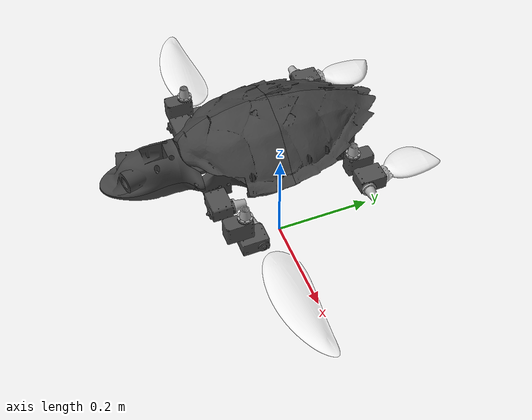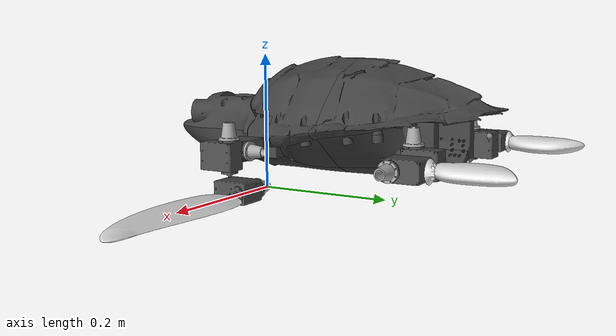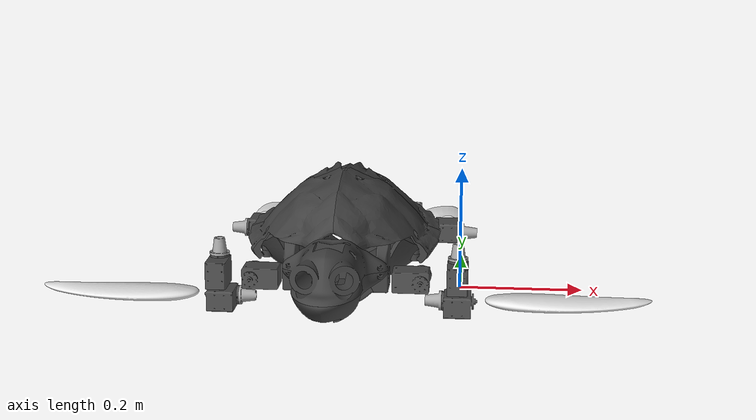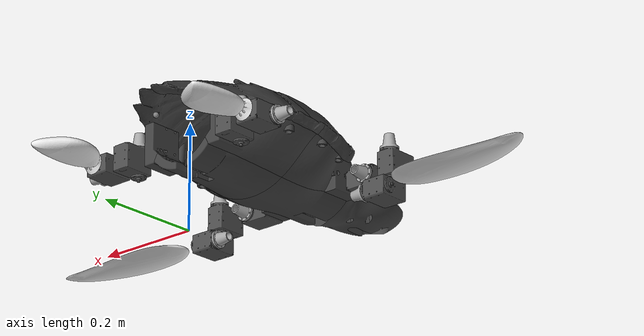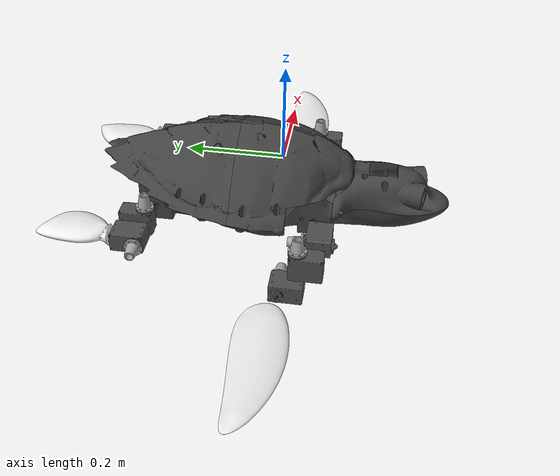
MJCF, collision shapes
<?xml version="1.0" ?>
<!-- Real turtle robot from Onshape export, adapted for MJPC Turtle 3D Swimming task.
     Actuators replaced with velocity type; MJPC sites added to root body. -->
<mujoco model="turtle_3dswimming_body">
  <compiler angle="radian" meshdir="assets" autolimits="true"/>
  <option integrator="implicit" timestep="0.005" gravity="0 0 0" density="1000" viscosity="0.0009" cone="elliptic" noslip_iterations="1"/>
  <default>
    <default class="turtle">
      <default class="visual">
        <geom type="mesh" contype="0" conaffinity="0" group="2"/>
      </default>
      <default class="collision">
        <geom group="3"/>
      </default>
    </default>
    <default class="fluid-ellipsoid-model">
        <geom fluidshape="ellipsoid"/>
    </default>
  </default>
  <worldbody>
    <!-- Link fr13_s105k (root body — free base) -->
    <body name="fr13_s105k" pos="0 0 0" quat="1 0 0 0" childclass="turtle">
      <inertial pos="-0.196495 0.00135248 0.0717682" mass="6.33343" fullinertia="0.137185 0.0361035 0.148315 0.000586929 -4.92463e-05 -0.00482738"/>
      <joint name="world_frame_to_base" type="free" axis="0.0 -1.0 0.0" />

      <!-- MJPC task sites: body-frame positions for head (front), tail (rear), and CoM -->
      <!-- Convention: -y = forward/head direction, +y = rear/tail direction -->
      <site name="base_cog"  pos="-0.196495  0.00135248 0.0717682"/>
      <site name="head_pos"  pos="-0.196    -0.22       0.072"/>
      <site name="tail_pos"  pos="-0.196     0.28       0.072"/>

      <!-- Part shell_bottom_bl -->
      <geom type="mesh" class="visual" pos="-0.193066 0.0607691 0.0949323" quat="0.706451 0.03038 0.0331563 -0.706332" mesh="shell_bottom_bl" material="shell_bottom_bl_material"/>
      <geom type="mesh" class="collision" pos="-0.193066 0.0607691 0.0949323" quat="0.706451 0.03038 0.0331563 -0.706332" mesh="shell_bottom_bl" material="shell_bottom_bl_material"/>
      <!-- Part shell -->
      <geom type="mesh" class="visual" pos="-0.193066 0.0607691 0.0949323" quat="0.706451 0.03038 0.0331563 -0.706332" mesh="shell" material="shell_material"/>
      <geom type="mesh" class="collision" pos="-0.193066 0.0607691 0.0949323" quat="0.706451 0.03038 0.0331563 -0.706332" mesh="shell" material="shell_material"/>
      <!-- Part protector -->
      <geom type="mesh" class="visual" pos="-0.0607344 -0.104872 0.0406092" quat="0.707107 0.707107 0.000629741 0.000629741" mesh="protector" material="protector_material"/>
      <geom type="mesh" class="collision" pos="-0.0607344 -0.104872 0.0406092" quat="0.707107 0.707107 0.000629741 0.000629741" mesh="protector" material="protector_material"/>
      <!-- Part 4in_tube -->
      <geom type="mesh" class="visual" pos="-0.196045 -0.0992129 0.0731481" quat="7.88867e-16 -0.707736 0.706477 -5.03839e-16" mesh="4in_tube" material="4in_tube_material"/>
      <!-- Part shell_2 -->
      <geom type="mesh" class="visual" pos="-0.193066 0.0607691 0.0949323" quat="0.706451 0.03038 0.0331563 -0.706332" mesh="shell__2" material="shell__2_material"/>
      <geom type="mesh" class="collision" pos="-0.193066 0.0607691 0.0949323" quat="0.706451 0.03038 0.0331563 -0.706332" mesh="shell__2" material="shell__2_material"/>
      <!-- Part shell_bottom_br -->
      <geom type="mesh" class="visual" pos="-0.193066 0.0607691 0.0949323" quat="0.706451 0.03038 0.0331563 -0.706332" mesh="shell_bottom_br" material="shell_bottom_br_material"/>
      <geom type="mesh" class="collision" pos="-0.193066 0.0607691 0.0949323" quat="0.706451 0.03038 0.0331563 -0.706332" mesh="shell_bottom_br" material="shell_bottom_br_material"/>
      <!-- Part shell_bottom_fl -->
      <geom type="mesh" class="visual" pos="-0.193066 0.0607691 0.0949323" quat="0.706451 0.03038 0.0331563 -0.706332" mesh="shell_bottom_fl" material="shell_bottom_fl_material"/>
      <geom type="mesh" class="collision" pos="-0.193066 0.0607691 0.0949323" quat="0.706451 0.03038 0.0331563 -0.706332" mesh="shell_bottom_fl" material="shell_bottom_fl_material"/>
      <!-- Part explorehd camera (no collision) -->
      <geom type="mesh" class="visual" pos="-0.171515 -0.255003 0.0888314" quat="0.70089 0.70089 0.0935589 0.0935589" mesh="explorehd_2_0_public_step_1_solid1" material="explorehd_2_0_public_step_1_solid1_material"/>
      <!-- Part shell_bottom_bm -->
      <geom type="mesh" class="visual" pos="-0.193066 0.0607691 0.0949323" quat="0.706451 0.03038 0.0331563 -0.706332" mesh="shell_bottom_bm" material="shell_bottom_bm_material"/>
      <geom type="mesh" class="collision" pos="-0.193066 0.0607691 0.0949323" quat="0.706451 0.03038 0.0331563 -0.706332" mesh="shell_bottom_bm" material="shell_bottom_bm_material"/>
      <!-- Part fr13_s105k body (visual only) -->
      <geom type="mesh" class="visual" pos="-0.111735 -0.104563 0.0406092" quat="0.500445 0.499555 0.500445 -0.499555" mesh="fr13_s105k" material="fr13_s105k_material"/>
      <!-- Part wte4_m_clamp -->
      <geom type="mesh" class="visual" pos="-0.195579 -0.079712 0.0731481" quat="0.500445 0.499555 0.500445 -0.499555" mesh="wte4_m_clamp" material="wte4_m_clamp_material"/>
      <!-- Part 4in_flange (front) -->
      <geom type="mesh" class="visual" pos="-0.196082 -0.0782129 0.0731481" quat="0.707107 0.707107 0.000629741 0.000629741" mesh="4in_flange" material="4in_flange_material"/>
      <!-- Part head_bottom -->
      <geom type="mesh" class="visual" pos="-0.195957 -0.148475 0.0604314" quat="0.707106 0.707106 0.00127394 0.00127394" mesh="head_bottom" material="head_bottom_material"/>
      <geom type="mesh" class="collision" pos="-0.195957 -0.148475 0.0604314" quat="0.707106 0.707106 0.00127394 0.00127394" mesh="head_bottom" material="head_bottom_material"/>
      <!-- Part shell_3 -->
      <geom type="mesh" class="visual" pos="-0.193066 0.0607691 0.0949323" quat="0.706451 0.03038 0.0331563 -0.706332" mesh="shell__3" material="shell__3_material"/>
      <geom type="mesh" class="collision" pos="-0.193066 0.0607691 0.0949323" quat="0.706451 0.03038 0.0331563 -0.706332" mesh="shell__3" material="shell__3_material"/>
      <!-- Part 4in_flange (rear) -->
      <geom type="mesh" class="visual" pos="-0.196542 0.179787 0.0731481" quat="0.000629741 0.000629741 -0.707107 -0.707107" mesh="4in_flange" material="4in_flange_material"/>
      <!-- Part xw540 motor (front left mount) -->
      <geom type="mesh" class="visual" pos="-0.0607351 -0.104472 0.0406092" quat="0.500445 0.499555 0.500445 -0.499555" mesh="xw540_n105_i101_stp" material="xw540_n105_i101_stp_material"/>
      <geom type="mesh" class="collision" pos="-0.0607351 -0.104472 0.0406092" quat="0.500445 0.499555 0.500445 -0.499555" mesh="xw540_n105_i101_stp" material="xw540_n105_i101_stp_material"/>
      <!-- Part xw540 motor (front right mount) -->
      <geom type="mesh" class="visual" pos="-0.331335 -0.104954 0.0406092" quat="0.499555 0.500445 -0.499555 0.500445" mesh="xw540_n105_i101_stp" material="xw540_n105_i101_stp_material"/>
      <geom type="mesh" class="collision" pos="-0.331335 -0.104954 0.0406092" quat="0.499555 0.500445 -0.499555 0.500445" mesh="xw540_n105_i101_stp" material="xw540_n105_i101_stp_material"/>
      <!-- Part shell_bottom_fm -->
      <geom type="mesh" class="visual" pos="-0.193066 0.0607691 0.0949323" quat="0.706451 0.03038 0.0331563 -0.706332" mesh="shell_bottom_fm" material="shell_bottom_fm_material"/>
      <geom type="mesh" class="collision" pos="-0.193066 0.0607691 0.0949323" quat="0.706451 0.03038 0.0331563 -0.706332" mesh="shell_bottom_fm" material="shell_bottom_fm_material"/>
      <!-- Part explorehd camera 2 (no collision) -->
      <geom type="mesh" class="visual" pos="-0.219736 -0.25548 0.0888314" quat="0.701223 0.701223 -0.0910328 -0.0910328" mesh="explorehd_2_0_public_step_1_solid1" material="explorehd_2_0_public_step_1_solid1_material"/>
      <!-- Part fr13_h105k (visual, rear hub area) -->
      <geom type="mesh" class="visual" pos="-0.282684 0.203633 0.0406092" quat="0.500445 -0.499555 -0.500445 -0.499555" mesh="fr13_h105k" material="fr13_h105k_material"/>
      <!-- Part wte4_m_clamp_2 -->
      <geom type="mesh" class="visual" pos="-0.196579 -0.0797138 0.0731481" quat="0.499555 0.500445 -0.499555 0.500445" mesh="wte4_m_clamp" material="wte4_m_clamp_material"/>
      <!-- Part wte4_m_clamp_3 -->
      <geom type="mesh" class="visual" pos="-0.196044 0.181288 0.0731481" quat="0.500445 -0.499555 -0.500445 -0.499555" mesh="wte4_m_clamp" material="wte4_m_clamp_material"/>
      <!-- Part head_top -->
      <geom type="mesh" class="visual" pos="-0.195957 -0.148475 0.0604314" quat="0.707106 0.707106 0.00127394 0.00127394" mesh="head_top" material="head_top_material"/>
      <geom type="mesh" class="collision" pos="-0.195957 -0.148475 0.0604314" quat="0.707106 0.707106 0.00127394 0.00127394" mesh="head_top" material="head_top_material"/>
      <!-- Part fr13_s105k_2 (visual) -->
      <geom type="mesh" class="visual" pos="-0.280335 -0.104863 0.0406092" quat="0.499555 0.500445 -0.499555 0.500445" mesh="fr13_s105k" material="fr13_s105k_material"/>
      <!-- Part wte4_m_clamp_4 -->
      <geom type="mesh" class="visual" pos="-0.197044 0.181286 0.0731481" quat="0.499555 -0.500445 0.499555 0.500445" mesh="wte4_m_clamp" material="wte4_m_clamp_material"/>
      <!-- Part wte4_end_cap (front) -->
      <geom type="mesh" class="visual" pos="-0.196034 -0.105213 0.0731481" quat="0.000629741 -0.000629741 0.707107 -0.707107" mesh="wte4_end_cap_10xm10_r2" material="wte4_end_cap_10xm10_r2_material"/>
      <!-- Part wte4_end_cap (rear) -->
      <geom type="mesh" class="visual" pos="-0.19659 0.206787 0.0731481" quat="0.000629741 0.000629741 -0.707107 -0.707107" mesh="wte4_end_cap_10xm10_r2" material="wte4_end_cap_10xm10_r2_material"/>
      <!-- Part shell_4 -->
      <geom type="mesh" class="visual" pos="-0.193066 0.0607691 0.0949323" quat="0.706451 0.03038 0.0331563 -0.706332" mesh="shell__4" material="shell__4_material"/>
      <geom type="mesh" class="collision" pos="-0.193066 0.0607691 0.0949323" quat="0.706451 0.03038 0.0331563 -0.706332" mesh="shell__4" material="shell__4_material"/>
      <!-- Part shell_bottom_fr -->
      <geom type="mesh" class="visual" pos="-0.193066 0.0607691 0.0949323" quat="0.706451 0.03038 0.0331563 -0.706332" mesh="shell_bottom_fr" material="shell_bottom_fr_material"/>
      <geom type="mesh" class="collision" pos="-0.193066 0.0607691 0.0949323" quat="0.706451 0.03038 0.0331563 -0.706332" mesh="shell_bottom_fr" material="shell_bottom_fr_material"/>
      <!-- Part protector_2 -->
      <geom type="mesh" class="visual" pos="-0.331335 -0.104954 0.0406092" quat="0.707107 0.707107 0.000629741 0.000629741" mesh="protector" material="protector_material"/>
      <geom type="mesh" class="collision" pos="-0.331335 -0.104954 0.0406092" quat="0.707107 0.707107 0.000629741 0.000629741" mesh="protector" material="protector_material"/>

      <!-- ===================== LEFT FRONT FLIPPER CHAIN ===================== -->
      <body name="left_front_link_1" pos="-0.0607821 -0.0780719 0.0406092" quat="0.500445 0.499555 0.500445 -0.499555">
        <joint name="shoulderL1" type="hinge" axis="0 0 -1" range="-1.0 1.0"/>
        <inertial pos="-0.000940071 0.0536412 0.0112038" mass="0.245024" fullinertia="0.000128486 0.000131437 9.86795e-05 1.004e-06 -3.62127e-06 9.71519e-06"/>
        <geom type="mesh" class="visual" pos="6.245e-17 0.058 -0.0045" quat="0.5 -0.5 0.5 -0.5" mesh="xw540_n105_i101_stp" material="xw540_n105_i101_stp_material"/>
        <geom type="mesh" class="collision" pos="6.245e-17 0.058 -0.0045" quat="0.5 -0.5 0.5 -0.5" mesh="xw540_n105_i101_stp" material="xw540_n105_i101_stp_material"/>
        <geom type="mesh" class="visual" pos="0.0004 0.058 -0.0045" quat="0.5 0.5 0.5 0.5" mesh="protector" material="protector_material"/>
        <geom type="mesh" class="collision" pos="0.0004 0.058 -0.0045" quat="0.5 0.5 0.5 0.5" mesh="protector" material="protector_material"/>
        <geom type="mesh" class="visual" pos="2.08167e-17 0.032 0.011" quat="0.707107 6.62943e-16 0.707107 -3.92187e-16" mesh="fr13_s106k" material="fr13_s106k_material"/>
        <geom type="mesh" class="visual" pos="4.85723e-17 0.03 0.0265" quat="0.707107 -6.79418e-17 0.707107 -3.38828e-16" mesh="fr13_h105k" material="fr13_h105k_material"/>
        <body name="left_front_link_2" pos="0.0265 0.058 -0.0045" quat="0.5 0.5 -0.5 -0.5">
          <joint name="shoulderL2" type="hinge" range="-1.0 1.0"/>
          <inertial pos="0.00102508 -0.0165904 -0.0243109" mass="0.224704" fullinertia="9.36859e-05 7.47238e-05 0.000114792 3.31983e-06 3.89075e-07 -4.1386e-07"/>
          <geom type="mesh" class="visual" pos="1.04083e-17 -0.031 -0.026" quat="6.27293e-18 0.707107 -0 -0.707107" mesh="xw540_n105_i101_stp" material="xw540_n105_i101_stp_material"/>
          <geom type="mesh" class="collision" pos="1.04083e-17 -0.031 -0.026" quat="6.27293e-18 0.707107 -0 -0.707107" mesh="xw540_n105_i101_stp" material="xw540_n105_i101_stp_material"/>
          <geom type="mesh" class="visual" pos="6.07153e-18 -0.0155 1.73472e-18" quat="0.5 -0.5 0.5 -0.5" mesh="fr13_s106k" material="fr13_s106k_material"/>
          <geom type="mesh" class="visual" pos="-0.0004 -0.031 -0.026" quat="0.5 0.5 -0.5 -0.5" mesh="protector" material="protector_material"/>
          <geom type="mesh" class="collision" pos="-0.0004 -0.031 -0.026" quat="0.5 0.5 -0.5 -0.5" mesh="protector" material="protector_material"/>
          <body name="left_flipper" pos="-0.0265 -0.031 -0.026" quat="0.707107 -1.82586e-17 0.707107 -8.82852e-17">
            <joint name="shoulderL3" type="hinge" range="-1.3 1.3"/>
            <inertial pos="-9.56975e-09 -0.00507293 -0.139314" mass="0.254495" fullinertia="0.00108025 0.000995743 9.46776e-05 -1.47703e-10 5.8036e-10 -4.08156e-05"/>
            <geom type="mesh" class="visual" pos="1.31492e-15 -0.0224902 -0.147823" quat="0.40558 -0.579228 -0.40558 0.579228" mesh="flipper_silicone" material="flipper_silicone_material"/>
            <geom type="mesh" class="collision" fluidshape="ellipsoid" pos="1.31492e-15 -0.0224902 -0.147823" quat="0.40558 -0.579228 -0.40558 0.579228" mesh="flipper_silicone" material="flipper_silicone_material"/>
            <geom type="mesh" class="visual" pos="6.08888e-16 -0.0018751 -0.0539563" quat="0.477714 -0.521334 -0.477714 0.521334" mesh="joint_pin" material="joint_pin_material"/>
            <geom type="mesh" class="visual" pos="5.72459e-16 -0.0018751 -0.0539563" quat="0.477714 -0.521334 -0.477714 0.521334" mesh="joint_clamp" material="joint_clamp_material"/>
            <geom type="mesh" class="visual" pos="5.96745e-16 -0.0306545 -0.0482414" quat="0.420603 -0.568413 -0.420603 0.568413" mesh="joint_clamp" material="joint_clamp_material"/>
            <geom type="mesh" class="visual" pos="5.16948e-16 -0.0018751 -0.0539563" quat="0.477714 -0.521334 -0.477714 0.521334" mesh="humerus_adapter" material="humerus_adapter_material"/>
            <geom type="mesh" class="visual" pos="5.70724e-16 -0.0018751 -0.0539563" quat="0.477714 -0.521334 -0.477714 0.521334" mesh="joint_pin__2" material="joint_pin__2_material"/>
          </body>
        </body>
      </body>

      <!-- ===================== RIGHT FRONT FLIPPER CHAIN ===================== -->
      <body name="right_front_link_1" pos="-0.331282 -0.134454 0.0406092" quat="0.499555 0.500445 -0.499555 0.500445">
        <joint name="shoulderR1" type="hinge" axis="0 0 -1" range="-1.0 1.0"/>
        <inertial pos="0.000940071 0.0536412 -0.0437962" mass="0.245024" fullinertia="0.000128486 0.000131437 9.86795e-05 -1.004e-06 3.61792e-06 9.71519e-06"/>
        <geom type="mesh" class="visual" pos="-0.0004 0.058 -0.0595" quat="0.5 0.5 -0.5 -0.5" mesh="protector" material="protector_material"/>
        <geom type="mesh" class="collision" pos="-0.0004 0.058 -0.0595" quat="0.5 0.5 -0.5 -0.5" mesh="protector" material="protector_material"/>
        <geom type="mesh" class="visual" pos="-2.08167e-17 0.032 -0.044" quat="0.707107 -3.66291e-17 -0.707107 -3.60073e-16" mesh="fr13_s106k" material="fr13_s106k_material"/>
        <geom type="mesh" class="visual" pos="2.77556e-17 0.03 -0.0285" quat="0.707107 -1.48687e-16 0.707107 -1.51816e-16" mesh="fr13_h105k" material="fr13_h105k_material"/>
        <geom type="mesh" class="visual" pos="2.08167e-17 0.058 -0.0595" quat="0.5 -0.5 -0.5 0.5" mesh="xw540_n105_i101_stp" material="xw540_n105_i101_stp_material"/>
        <geom type="mesh" class="collision" pos="2.08167e-17 0.058 -0.0595" quat="0.5 -0.5 -0.5 0.5" mesh="xw540_n105_i101_stp" material="xw540_n105_i101_stp_material"/>
        <body name="right_front_link_2" pos="-0.0265 0.058 -0.0595" quat="0.5 0.5 0.5 0.5">
          <joint name="shoulderR2" type="hinge" range="-1.0 1.0"/>
          <inertial pos="-0.00102508 -0.0165904 -0.0243109" mass="0.224704" fullinertia="9.36859e-05 7.47238e-05 0.000114792 -3.32318e-06 -3.89075e-07 -4.1386e-07"/>
          <geom type="mesh" class="visual" pos="-1.83187e-15 -0.0155 9.71445e-17" quat="0.5 -0.5 -0.5 0.5" mesh="fr13_s106k" material="fr13_s106k_material"/>
          <geom type="mesh" class="visual" pos="-4.10783e-15 -0.031 -0.026" quat="5.07343e-14 0.707107 -5.07372e-14 0.707107" mesh="xw540_n105_i101_stp" material="xw540_n105_i101_stp_material"/>
          <geom type="mesh" class="collision" pos="-4.10783e-15 -0.031 -0.026" quat="5.07343e-14 0.707107 -5.07372e-14 0.707107" mesh="xw540_n105_i101_stp" material="xw540_n105_i101_stp_material"/>
          <geom type="mesh" class="visual" pos="0.0004 -0.031 -0.026" quat="0.5 0.5 0.5 0.5" mesh="protector" material="protector_material"/>
          <geom type="mesh" class="collision" pos="0.0004 -0.031 -0.026" quat="0.5 0.5 0.5 0.5" mesh="protector" material="protector_material"/>
          <body name="right_flipper" pos="0.0265 -0.031 -0.026" quat="0.5 -0.5 -0.5 0.5">
            <joint name="shoulderR3" type="hinge" range="-1.3 1.3"/>
            <inertial pos="-0.00507293 9.56975e-09 -0.139314" mass="0.254495" fullinertia="0.000995743 0.00108025 9.46776e-05 1.47703e-10 -4.08156e-05 -5.8036e-10"/>
            <geom type="mesh" class="visual" pos="-0.0224902 -6.52256e-16 -0.147823" quat="0.696364 -0.696364 0.122788 0.122788" mesh="flipper_silicone" material="flipper_silicone_material"/>
            <geom type="mesh" class="collision" fluidshape="ellipsoid" pos="-0.0224902 -6.52256e-16 -0.147823" quat="0.696364 -0.696364 0.122788 0.122788" mesh="flipper_silicone" material="flipper_silicone_material"/>
            <geom type="mesh" class="visual" pos="-0.0018751 -4.96131e-16 -0.0539563" quat="0.706434 -0.706434 0.0308436 0.0308436" mesh="joint_pin" material="joint_pin_material"/>
            <geom type="mesh" class="visual" pos="-0.0018751 -5.0307e-16 -0.0539563" quat="0.706434 -0.706434 0.0308436 0.0308436" mesh="joint_clamp" material="joint_clamp_material"/>
            <geom type="mesh" class="visual" pos="-0.0306545 -4.30211e-16 -0.0482414" quat="0.69934 -0.69934 0.104517 0.104517" mesh="joint_clamp" material="joint_clamp_material"/>
            <geom type="mesh" class="visual" pos="-0.0018751 -5.0307e-16 -0.0539563" quat="0.706434 -0.706434 0.0308436 0.0308436" mesh="humerus_adapter" material="humerus_adapter_material"/>
            <geom type="mesh" class="visual" pos="-0.0018751 -5.10009e-16 -0.0539563" quat="0.706434 -0.706434 0.0308436 0.0308436" mesh="joint_pin__2" material="joint_pin__2_material"/>
          </body>
        </body>
      </body>

      <!-- ===================== REAR HUB (fixed) ===================== -->
      <body name="rear_hub" pos="-0.113785 0.203934 0.0516092" quat="0.00029586 -0.707105 -0.00155534 0.707107">
        <inertial pos="0.0119856 -2.99849e-17 -0.00787955" mass="0.0203204" fullinertia="4.62588e-06 1.09516e-05 1.20876e-05 -2.73215e-24 5.95909e-08 2.10637e-24"/>
        <geom type="mesh" class="visual" pos="0.011 -2.77556e-17 -0.002" quat="0.707107 0.707107 0 3.0347e-21" mesh="fr13_h105k" material="fr13_h105k_material"/>

        <!-- ===================== LEFT REAR FLIPPER CHAIN ===================== -->
        <body name="left_rear_link_1" pos="-0.0155 -5.55112e-17 -0.032" quat="1.60079e-19 -0.707107 -0 0.707107">
          <joint name="hip_L1" type="hinge" range="-0.8 0.8"/>
          <inertial pos="0.00168914 0.0144096 -0.0253749" mass="0.224704" fullinertia="0.000114792 7.47238e-05 9.36859e-05 -4.1386e-07 3.89075e-07 3.32318e-06"/>
          <geom type="mesh" class="visual" pos="0.026 0.0155 -0.0264" quat="0.707107 -1.22868e-15 2.33147e-15 0.707107" mesh="fr13_s106k" material="fr13_s106k_material"/>
          <geom type="mesh" class="visual" pos="-6.93889e-17 -2.77556e-17 -0.0268" quat="2.32631e-15 -1 -6.60129e-16 5.47305e-16" mesh="protector" material="protector_material"/>
          <geom type="mesh" class="collision" pos="-6.93889e-17 -2.77556e-17 -0.0268" quat="2.32631e-15 -1 -6.60129e-16 5.47305e-16" mesh="protector" material="protector_material"/>
          <geom type="mesh" class="visual" pos="-1.38778e-17 -2.77556e-17 -0.0264" quat="0 1 0 0" mesh="xw540_n105_i101_stp" material="xw540_n105_i101_stp_material"/>
          <geom type="mesh" class="collision" pos="-1.38778e-17 -2.77556e-17 -0.0264" quat="0 1 0 0" mesh="xw540_n105_i101_stp" material="xw540_n105_i101_stp_material"/>
          <body name="left_rear_link_2" pos="0.0258 -1.94289e-16 -0.0264" quat="1.10167e-15 0.707107 -2.10942e-15 -0.707107">
            <joint name="hip_L2" type="hinge" range="-0.65 1.1"/>
            <inertial pos="-1.42654e-07 -0.0574016 -0.0258686" mass="0.386096" fullinertia="0.00118489 0.000138073 0.00110061 -5.43431e-09 -1.95391e-09 0.000100688"/>
            <geom type="mesh" class="visual" pos="-5.55112e-17 -0.05099 -0.0295" quat="1 -8.25855e-17 0 2.30259e-16" mesh="fr13_s105k" material="fr13_s105k_material"/>
            <geom type="mesh" class="visual" pos="-6.93889e-18 9.95644e-06 -0.0295" quat="1 -0 -1.94289e-16 4.09526e-16" mesh="xw540_n105_i101_stp" material="xw540_n105_i101_stp_material"/>
            <geom type="mesh" class="collision" pos="-6.93889e-18 9.95644e-06 -0.0295" quat="1 -0 -1.94289e-16 4.09526e-16" mesh="xw540_n105_i101_stp" material="xw540_n105_i101_stp_material"/>
            <geom type="mesh" class="visual" pos="2.08167e-17 9.95644e-06 -0.0291" quat="0.707107 -4.35436e-17 1.11022e-16 0.707107" mesh="protector" material="protector_material"/>
            <geom type="mesh" class="collision" pos="2.08167e-17 9.95644e-06 -0.0291" quat="0.707107 -4.35436e-17 1.11022e-16 0.707107" mesh="protector" material="protector_material"/>
            <geom type="mesh" class="visual" pos="-4.16334e-17 -0.0760687 -0.0329184" quat="0.663497 0.244483 -0.244483 0.663497" mesh="rear_flipper" material="rear_flipper_material"/>
            <geom type="mesh" class="collision" fluidshape="ellipsoid" pos="-4.16334e-17 -0.0760687 -0.0329184" quat="0.663497 0.244483 -0.244483 0.663497" mesh="rear_flipper" material="rear_flipper_material"/>
          </body>
        </body>
      </body>

      <!-- ===================== RIGHT REAR FLIPPER CHAIN ===================== -->
      <body name="right_rear_link_1" pos="-0.312684 0.20358 0.0671092" quat="1 -7.61795e-17 3.88578e-16 0.000890588">
        <joint name="hip_R1" type="hinge" range="-0.8 0.8"/>
        <inertial pos="-0.00168914 0.0144096 -0.0249749" mass="0.224704" fullinertia="0.000114792 7.47238e-05 9.36859e-05 4.1386e-07 -3.89075e-07 3.31983e-06"/>
        <geom type="mesh" class="visual" pos="0 2.77556e-17 -0.026" quat="0 1 0 0" mesh="xw540_n105_i101_stp" material="xw540_n105_i101_stp_material"/>
          <geom type="mesh" class="collision" pos="0 2.77556e-17 -0.026" quat="0 1 0 0" mesh="xw540_n105_i101_stp" material="xw540_n105_i101_stp_material"/>
        <geom type="mesh" class="visual" pos="0 2.77556e-17 -0.0264" quat="7.16082e-17 1 -2.54451e-16 1.55845e-16" mesh="protector" material="protector_material"/>
        <geom type="mesh" class="collision" pos="0 2.77556e-17 -0.0264" quat="7.16082e-17 1 -2.54451e-16 1.55845e-16" mesh="protector" material="protector_material"/>
        <geom type="mesh" class="visual" pos="-0.026 0.0155 -0.026" quat="6.93354e-17 0.707107 0.707107 1.51062e-16" mesh="fr13_s106k" material="fr13_s106k_material"/>
        <body name="right_rear_link_2" pos="-0.0258 1.66533e-16 -0.026" quat="0.707107 -2.76509e-16 -0.707107 -5.39823e-16">
          <joint name="hip_R2" type="hinge" range="-0.65 1.1"/>
          <inertial pos="-1.42654e-07 0.0574116 0.0228686" mass="0.386096" fullinertia="0.00118489 0.000138073 0.00110061 5.43431e-09 1.95391e-09 0.000100688"/>
          <geom type="mesh" class="visual" pos="0 0 0.0265" quat="0 1 0 0" mesh="xw540_n105_i101_stp" material="xw540_n105_i101_stp_material"/>
          <geom type="mesh" class="collision" pos="0 0 0.0265" quat="0 1 0 0" mesh="xw540_n105_i101_stp" material="xw540_n105_i101_stp_material"/>
          <geom type="mesh" class="visual" pos="0 2.77556e-17 0.0261" quat="3.72151e-17 2.78081e-17 -1 -1.4173e-16" mesh="protector" material="protector_material"/>
          <geom type="mesh" class="collision" pos="0 2.77556e-17 0.0261" quat="3.72151e-17 2.78081e-17 -1 -1.4173e-16" mesh="protector" material="protector_material"/>
          <geom type="mesh" class="visual" pos="-5.55112e-17 0.0760786 0.0299184" quat="0.244483 -0.663497 0.663497 0.244483" mesh="rear_flipper" material="rear_flipper_material"/>
          <geom type="mesh" class="collision" fluidshape="ellipsoid" pos="-5.55112e-17 0.0760786 0.0299184" quat="0.244483 -0.663497 0.663497 0.244483" mesh="rear_flipper" material="rear_flipper_material"/>
          <geom type="mesh" class="visual" pos="-5.55112e-17 0.051 0.0265" quat="2.91477e-16 1 -7.52664e-17 4.02093e-16" mesh="fr13_s105k" material="fr13_s105k_material"/>
        </body>
      </body>

    </body>
  </worldbody>

  <asset>
    <mesh file="joint_clamp.stl"/>
    <mesh file="shell__2.stl"/>
    <mesh file="joint_pin.stl"/>
    <mesh file="head_bottom.stl"/>
    <mesh file="shell_bottom_bm.stl"/>
    <mesh file="fr13_s106k.stl"/>
    <mesh file="protector.stl"/>
    <mesh file="wte4_m_clamp.stl"/>
    <mesh file="shell_bottom_br.stl"/>
    <mesh file="rear_flipper.stl"/>
    <mesh file="explorehd_2_0_public_step_1_solid1.stl"/>
    <mesh file="wte4_end_cap_10xm10_r2.stl"/>
    <mesh file="shell.stl"/>
    <mesh file="shell__3.stl"/>
    <mesh file="head_top.stl"/>
    <mesh file="fr13_s105k.stl"/>
    <mesh file="4in_flange.stl"/>
    <mesh file="fr13_h105k.stl"/>
    <mesh file="flipper_silicone.stl"/>
    <mesh file="shell_bottom_bl.stl"/>
    <mesh file="4in_tube.stl"/>
    <mesh file="shell__4.stl"/>
    <mesh file="humerus_adapter.stl"/>
    <mesh file="shell_bottom_fm.stl"/>
    <mesh file="joint_pin__2.stl"/>
    <mesh file="shell_bottom_fl.stl"/>
    <mesh file="xw540_n105_i101_stp.stl"/>
    <mesh file="shell_bottom_fr.stl"/>
    <material name="shell_bottom_bl_material" rgba="0.25098 0.25098 0.25098 1"/>
    <material name="shell_material" rgba="0.25098 0.25098 0.25098 1"/>
    <material name="protector_material" rgba="0.647059 0.647059 0.647059 1"/>
    <material name="4in_tube_material" rgba="0.796078 0.823529 0.937255 1"/>
    <material name="shell__2_material" rgba="0.25098 0.25098 0.25098 1"/>
    <material name="shell_bottom_br_material" rgba="0.25098 0.25098 0.25098 1"/>
    <material name="shell_bottom_fl_material" rgba="0.25098 0.25098 0.25098 1"/>
    <material name="explorehd_2_0_public_step_1_solid1_material" rgba="0.796078 0.823529 0.937255 1"/>
    <material name="shell_bottom_bm_material" rgba="0.25098 0.25098 0.25098 1"/>
    <material name="fr13_s105k_material" rgba="0 0 0 1"/>
    <material name="wte4_m_clamp_material" rgba="0 0 0 1"/>
    <material name="4in_flange_material" rgba="0.615686 0.811765 0.929412 1"/>
    <material name="head_bottom_material" rgba="0.25098 0.25098 0.25098 1"/>
    <material name="shell__3_material" rgba="0.25098 0.25098 0.25098 1"/>
    <material name="xw540_n105_i101_stp_material" rgba="0.301961 0.301961 0.301961 1"/>
    <material name="shell_bottom_fm_material" rgba="0.25098 0.25098 0.25098 1"/>
    <material name="fr13_h105k_material" rgba="0 0 0 1"/>
    <material name="head_top_material" rgba="0.25098 0.25098 0.25098 1"/>
    <material name="wte4_end_cap_10xm10_r2_material" rgba="0 0 0 1"/>
    <material name="shell__4_material" rgba="0.25098 0.25098 0.25098 1"/>
    <material name="shell_bottom_fr_material" rgba="0.25098 0.25098 0.25098 1"/>
    <material name="fr13_s106k_material" rgba="0 0 0 1"/>
    <material name="flipper_silicone_material" rgba="0.917647 0.917647 0.917647 1"/>
    <material name="joint_pin_material" rgba="0.25098 0.25098 0.25098 1"/>
    <material name="joint_clamp_material" rgba="0.25098 0.25098 0.25098 1"/>
    <material name="humerus_adapter_material" rgba="0.25098 0.25098 0.25098 1"/>
    <material name="joint_pin__2_material" rgba="0.25098 0.25098 0.25098 1"/>
    <material name="rear_flipper_material" rgba="0.917647 0.917647 0.917647 1"/>
  </asset>
</mujoco>
